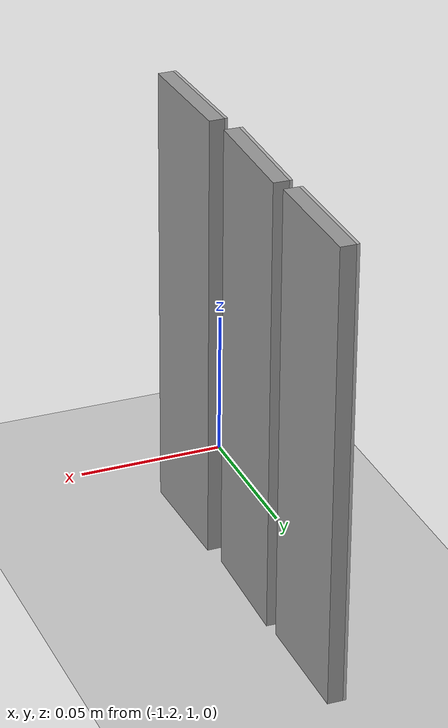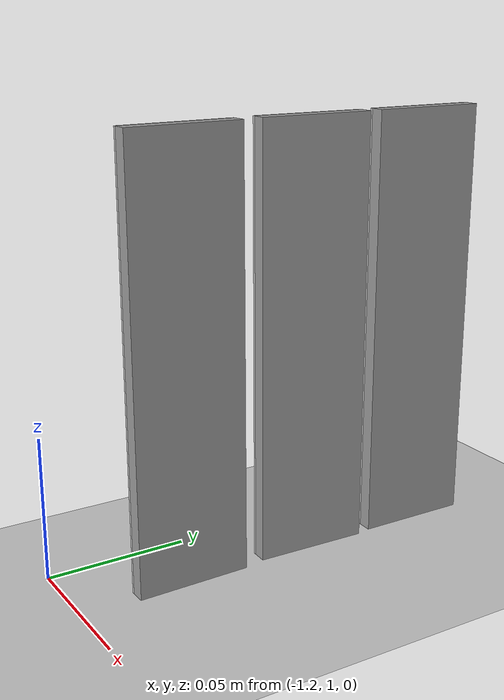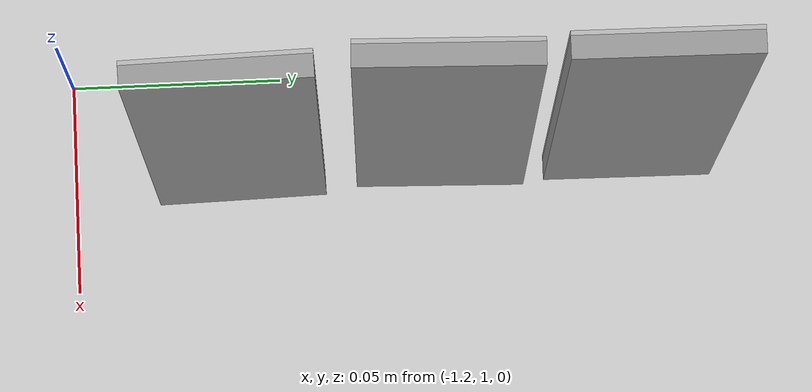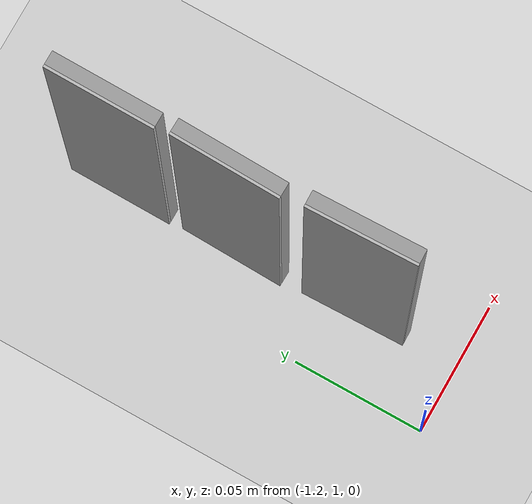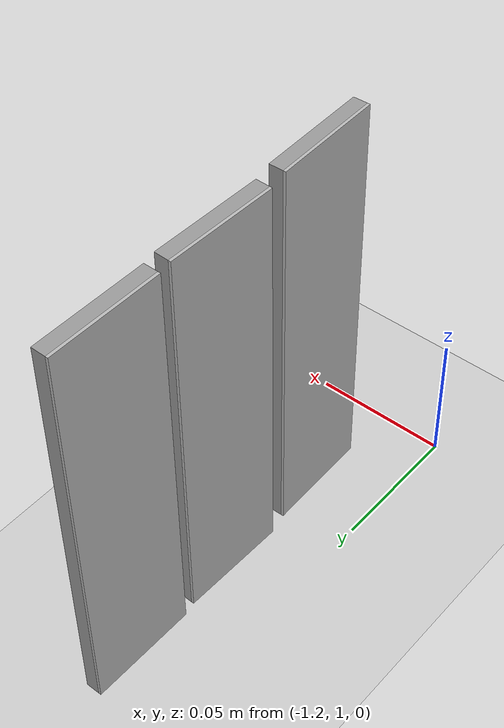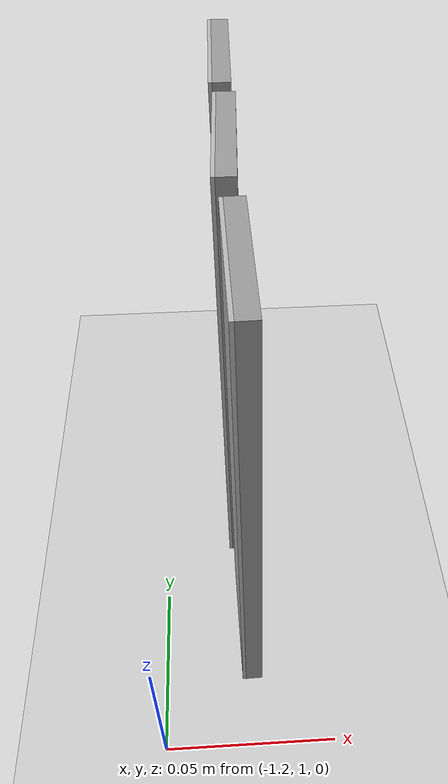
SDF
<sdf version="1.7">
 <world name="default">
  <model name="ground_plane">
   <static>1</static>
   <link name="link">
    <collision name="collision">
     <geometry><plane><normal>0 0 1</normal><size>100 100</size></plane></geometry>
     <surface>
      <contact><collide_bitmask>65535</collide_bitmask></contact>
      <friction><ode><mu>100</mu><mu2>50</mu2></ode></friction>
     </surface>
    </collision>
    <visual name="visual">
     <cast_shadows>0</cast_shadows>
     <geometry><plane><normal>0 0 1</normal><size>4.2 4.2</size></plane></geometry>
     <material><script><uri>file:///home/ros1/桌面/2/png1.material</uri><name>png1</name></script></material>
    </visual>
   </link>
  </model>
  <model name="man-4">
   <link name="link_0">
    <inertial>
     <mass>1</mass>
     <inertia>
      <ixx>0.166667</ixx>
      <ixy>0</ixy>
      <ixz>0</ixz>
      <iyy>0.166667</iyy>
      <iyz>0</iyz>
      <izz>0.166667</izz>
     </inertia>
    </inertial>
    <pose>0 -0.0015 -0 0 -0 0</pose>
    <visual name="visual">
     <geometry><box><size>0.04 0.005 0.15</size></box></geometry>
     <material>
      <lighting>1</lighting>
      <script><uri>file://media/materials/scripts/gazebo.material</uri><name>Gazebo/Grey</name></script>
      <shader type="pixel"><normal_map>__default__</normal_map></shader>
      <ambient>0.3 0.3 0.3 1</ambient>
      <diffuse>0.7 0.7 0.7 1</diffuse>
      <specular>0.01 0.01 0.01 1</specular>
      <emissive>0 0 0 1</emissive>
     </material>
    </visual>
    <collision name="collision">
     <geometry><box><size>0.04 0.005 0.15</size></box></geometry>
     <surface>
      <friction>
       <ode><mu>1</mu><mu2>1</mu2><fdir1>0 0 0</fdir1><slip1>0</slip1><slip2>0</slip2></ode>
       <torsional>
        <coefficient>1</coefficient>
        <patch_radius>0</patch_radius>
        <surface_radius>0</surface_radius>
        <use_patch_radius>1</use_patch_radius>
        <ode><slip>0</slip></ode>
       </torsional>
      </friction>
      <bounce><restitution_coefficient>0</restitution_coefficient><threshold>1e+06</threshold></bounce>
      <contact>
       <collide_without_contact>0</collide_without_contact>
       <collide_without_contact_bitmask>1</collide_without_contact_bitmask>
       <collide_bitmask>1</collide_bitmask>
       <ode>
        <soft_cfm>0</soft_cfm>
        <soft_erp>0.2</soft_erp>
        <kp>1e+13</kp>
        <kd>1</kd>
        <max_vel>0.01</max_vel>
        <min_depth>0</min_depth>
       </ode>
       <bullet>
        <split_impulse>1</split_impulse>
        <split_impulse_penetration_threshold>-0.01</split_impulse_penetration_threshold>
        <soft_cfm>0</soft_cfm>
        <soft_erp>0.2</soft_erp>
        <kp>1e+13</kp>
        <kd>1</kd>
       </bullet>
      </contact>
     </surface>
    </collision>
   </link>
   <link name="link_4">
    <inertial>
     <mass>1</mass>
     <inertia>
      <ixx>0.166667</ixx>
      <ixy>0</ixy>
      <ixz>0</ixz>
      <iyy>0.166667</iyy>
      <iyz>0</iyz>
      <izz>0.166667</izz>
     </inertia>
    </inertial>
    <pose>0 0.0015 -0 0 -0 0</pose>
    <visual name="visual">
     <geometry><box><size>0.04 0.001 0.15</size></box></geometry>
     <material>
      <script><uri>file:///home/ros1/model_editor_models/man-4/man_4.material</uri><name>man_4</name></script>
     </material>
    </visual>
    <collision name="collision">
     <geometry><box><size>0.04 0.001 0.15</size></box></geometry>
     <surface>
      <friction>
       <ode><mu>1</mu><mu2>1</mu2><fdir1>0 0 0</fdir1><slip1>0</slip1><slip2>0</slip2></ode>
       <torsional>
        <coefficient>1</coefficient>
        <patch_radius>0</patch_radius>
        <surface_radius>0</surface_radius>
        <use_patch_radius>1</use_patch_radius>
        <ode><slip>0</slip></ode>
       </torsional>
      </friction>
      <bounce><restitution_coefficient>0</restitution_coefficient><threshold>1e+06</threshold></bounce>
      <contact>
       <collide_without_contact>0</collide_without_contact>
       <collide_without_contact_bitmask>1</collide_without_contact_bitmask>
       <collide_bitmask>1</collide_bitmask>
       <ode>
        <soft_cfm>0</soft_cfm>
        <soft_erp>0.2</soft_erp>
        <kp>1e+13</kp>
        <kd>1</kd>
        <max_vel>0.01</max_vel>
        <min_depth>0</min_depth>
       </ode>
       <bullet>
        <split_impulse>1</split_impulse>
        <split_impulse_penetration_threshold>-0.01</split_impulse_penetration_threshold>
        <soft_cfm>0</soft_cfm>
        <soft_erp>0.2</soft_erp>
        <kp>1e+13</kp>
        <kd>1</kd>
       </bullet>
      </contact>
     </surface>
    </collision>
   </link>
   <static>0</static>
   <pose>-1.17659 1.08772 0.075 -1.1e-05 1.8e-05 1.54319</pose>
  </model>
  <model name="man-5">
   <link name="link_0">
    <inertial>
     <mass>1</mass>
     <inertia>
      <ixx>0.166667</ixx>
      <ixy>0</ixy>
      <ixz>0</ixz>
      <iyy>0.166667</iyy>
      <iyz>0</iyz>
      <izz>0.166667</izz>
     </inertia>
    </inertial>
    <pose>0 -0.0015 -0 0 -0 0</pose>
    <visual name="visual">
     <geometry><box><size>0.04 0.005 0.15</size></box></geometry>
     <material>
      <lighting>1</lighting>
      <script><uri>file://media/materials/scripts/gazebo.material</uri><name>Gazebo/Grey</name></script>
      <shader type="pixel"><normal_map>__default__</normal_map></shader>
      <ambient>0.3 0.3 0.3 1</ambient>
      <diffuse>0.7 0.7 0.7 1</diffuse>
      <specular>0.01 0.01 0.01 1</specular>
      <emissive>0 0 0 1</emissive>
     </material>
    </visual>
    <collision name="collision">
     <geometry><box><size>0.04 0.005 0.15</size></box></geometry>
     <surface>
      <friction>
       <ode><mu>1</mu><mu2>1</mu2><fdir1>0 0 0</fdir1><slip1>0</slip1><slip2>0</slip2></ode>
       <torsional>
        <coefficient>1</coefficient>
        <patch_radius>0</patch_radius>
        <surface_radius>0</surface_radius>
        <use_patch_radius>1</use_patch_radius>
        <ode><slip>0</slip></ode>
       </torsional>
      </friction>
      <bounce><restitution_coefficient>0</restitution_coefficient><threshold>1e+06</threshold></bounce>
      <contact>
       <collide_without_contact>0</collide_without_contact>
       <collide_without_contact_bitmask>1</collide_without_contact_bitmask>
       <collide_bitmask>1</collide_bitmask>
       <ode>
        <soft_cfm>0</soft_cfm>
        <soft_erp>0.2</soft_erp>
        <kp>1e+13</kp>
        <kd>1</kd>
        <max_vel>0.01</max_vel>
        <min_depth>0</min_depth>
       </ode>
       <bullet>
        <split_impulse>1</split_impulse>
        <split_impulse_penetration_threshold>-0.01</split_impulse_penetration_threshold>
        <soft_cfm>0</soft_cfm>
        <soft_erp>0.2</soft_erp>
        <kp>1e+13</kp>
        <kd>1</kd>
       </bullet>
      </contact>
     </surface>
    </collision>
   </link>
   <link name="link_4">
    <inertial>
     <mass>1</mass>
     <inertia>
      <ixx>0.166667</ixx>
      <ixy>0</ixy>
      <ixz>0</ixz>
      <iyy>0.166667</iyy>
      <iyz>0</iyz>
      <izz>0.166667</izz>
     </inertia>
    </inertial>
    <pose>0 0.0015 -0 0 -0 0</pose>
    <visual name="visual">
     <geometry><box><size>0.04 0.001 0.15</size></box></geometry>
     <material>
      <script><uri>file:///home/ros1/model_editor_models/man-5/man_5.material</uri><name>man_5</name></script>
     </material>
    </visual>
    <collision name="collision">
     <geometry><box><size>0.04 0.001 0.15</size></box></geometry>
     <surface>
      <friction>
       <ode><mu>1</mu><mu2>1</mu2><fdir1>0 0 0</fdir1><slip1>0</slip1><slip2>0</slip2></ode>
       <torsional>
        <coefficient>1</coefficient>
        <patch_radius>0</patch_radius>
        <surface_radius>0</surface_radius>
        <use_patch_radius>1</use_patch_radius>
        <ode><slip>0</slip></ode>
       </torsional>
      </friction>
      <bounce><restitution_coefficient>0</restitution_coefficient><threshold>1e+06</threshold></bounce>
      <contact>
       <collide_without_contact>0</collide_without_contact>
       <collide_without_contact_bitmask>1</collide_without_contact_bitmask>
       <collide_bitmask>1</collide_bitmask>
       <ode>
        <soft_cfm>0</soft_cfm>
        <soft_erp>0.2</soft_erp>
        <kp>1e+13</kp>
        <kd>1</kd>
        <max_vel>0.01</max_vel>
        <min_depth>0</min_depth>
       </ode>
       <bullet>
        <split_impulse>1</split_impulse>
        <split_impulse_penetration_threshold>-0.01</split_impulse_penetration_threshold>
        <soft_cfm>0</soft_cfm>
        <soft_erp>0.2</soft_erp>
        <kp>1e+13</kp>
        <kd>1</kd>
       </bullet>
      </contact>
     </surface>
    </collision>
   </link>
   <static>0</static>
   <pose>-1.17679 1.1326 0.075 -6e-06 6e-06 1.56191</pose>
  </model>
  <model name="man-14">
   <link name="link_0">
    <inertial>
     <mass>1</mass>
     <inertia>
      <ixx>0.166667</ixx>
      <ixy>0</ixy>
      <ixz>0</ixz>
      <iyy>0.166667</iyy>
      <iyz>0</iyz>
      <izz>0.166667</izz>
     </inertia>
    </inertial>
    <pose>0 -0.0015 -0 0 -0 0</pose>
    <visual name="visual">
     <geometry><box><size>0.04 0.005 0.15</size></box></geometry>
     <material>
      <lighting>1</lighting>
      <script><uri>file://media/materials/scripts/gazebo.material</uri><name>Gazebo/Grey</name></script>
      <shader type="pixel"><normal_map>__default__</normal_map></shader>
      <ambient>0.3 0.3 0.3 1</ambient>
      <diffuse>0.7 0.7 0.7 1</diffuse>
      <specular>0.01 0.01 0.01 1</specular>
      <emissive>0 0 0 1</emissive>
     </material>
    </visual>
    <collision name="collision">
     <geometry><box><size>0.04 0.005 0.15</size></box></geometry>
     <surface>
      <friction>
       <ode><mu>1</mu><mu2>1</mu2><fdir1>0 0 0</fdir1><slip1>0</slip1><slip2>0</slip2></ode>
       <torsional>
        <coefficient>1</coefficient>
        <patch_radius>0</patch_radius>
        <surface_radius>0</surface_radius>
        <use_patch_radius>1</use_patch_radius>
        <ode><slip>0</slip></ode>
       </torsional>
      </friction>
      <bounce><restitution_coefficient>0</restitution_coefficient><threshold>1e+06</threshold></bounce>
      <contact>
       <collide_without_contact>0</collide_without_contact>
       <collide_without_contact_bitmask>1</collide_without_contact_bitmask>
       <collide_bitmask>1</collide_bitmask>
       <ode>
        <soft_cfm>0</soft_cfm>
        <soft_erp>0.2</soft_erp>
        <kp>1e+13</kp>
        <kd>1</kd>
        <max_vel>0.01</max_vel>
        <min_depth>0</min_depth>
       </ode>
       <bullet>
        <split_impulse>1</split_impulse>
        <split_impulse_penetration_threshold>-0.01</split_impulse_penetration_threshold>
        <soft_cfm>0</soft_cfm>
        <soft_erp>0.2</soft_erp>
        <kp>1e+13</kp>
        <kd>1</kd>
       </bullet>
      </contact>
     </surface>
    </collision>
   </link>
   <link name="link_4">
    <inertial>
     <mass>1</mass>
     <inertia>
      <ixx>0.166667</ixx>
      <ixy>0</ixy>
      <ixz>0</ixz>
      <iyy>0.166667</iyy>
      <iyz>0</iyz>
      <izz>0.166667</izz>
     </inertia>
    </inertial>
    <pose>0 0.0015 -0 0 -0 0</pose>
    <visual name="visual">
     <geometry><box><size>0.04 0.001 0.15</size></box></geometry>
     <material>
      <script><uri>file:///home/ros1/model_editor_models/man-14/man_14.material</uri><name>man_14</name></script>
     </material>
    </visual>
    <collision name="collision">
     <geometry><box><size>0.04 0.001 0.15</size></box></geometry>
     <surface>
      <friction>
       <ode><mu>1</mu><mu2>1</mu2><fdir1>0 0 0</fdir1><slip1>0</slip1><slip2>0</slip2></ode>
       <torsional>
        <coefficient>1</coefficient>
        <patch_radius>0</patch_radius>
        <surface_radius>0</surface_radius>
        <use_patch_radius>1</use_patch_radius>
        <ode><slip>0</slip></ode>
       </torsional>
      </friction>
      <bounce><restitution_coefficient>0</restitution_coefficient><threshold>1e+06</threshold></bounce>
      <contact>
       <collide_without_contact>0</collide_without_contact>
       <collide_without_contact_bitmask>1</collide_without_contact_bitmask>
       <collide_bitmask>1</collide_bitmask>
       <ode>
        <soft_cfm>0</soft_cfm>
        <soft_erp>0.2</soft_erp>
        <kp>1e+13</kp>
        <kd>1</kd>
        <max_vel>0.01</max_vel>
        <min_depth>0</min_depth>
       </ode>
       <bullet>
        <split_impulse>1</split_impulse>
        <split_impulse_penetration_threshold>-0.01</split_impulse_penetration_threshold>
        <soft_cfm>0</soft_cfm>
        <soft_erp>0.2</soft_erp>
        <kp>1e+13</kp>
        <kd>1</kd>
       </bullet>
      </contact>
     </surface>
    </collision>
   </link>
   <static>0</static>
   <pose>-1.17508 1.04008 0.075 -2.2e-05 7e-06 1.59455</pose>
  </model>
 </world>
</sdf>
